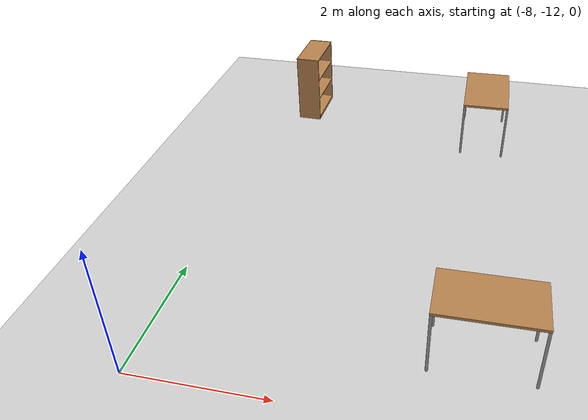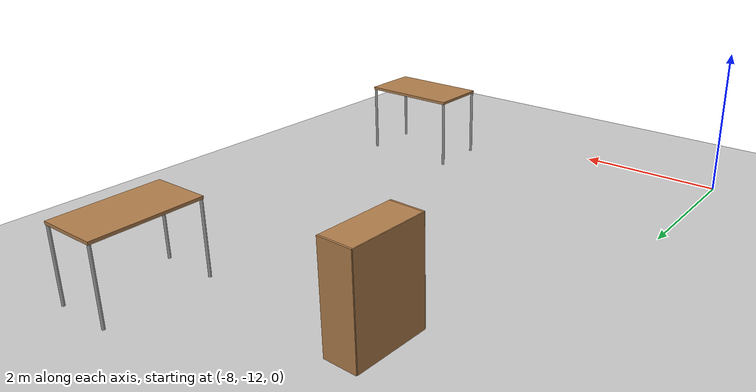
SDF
<sdf version="1.6">
 <world name="default">
  <model name="ground_plane">
   <static>1</static>
   <link name="link">
    <collision name="collision">
     <geometry><plane><normal>0 0 1</normal><size>100 100</size></plane></geometry>
     <surface><friction><ode><mu>100</mu><mu2>50</mu2></ode></friction></surface>
    </collision>
    <visual name="visual">
     <cast_shadows>0</cast_shadows>
     <geometry><plane><normal>0 0 1</normal><size>100 100</size></plane></geometry>
     <material>
      <script><uri>file://media/materials/scripts/gazebo.material</uri><name>Gazebo/Grey</name></script>
     </material>
    </visual>
   </link>
  </model>
  <model name="table_0_clone_clone_clone_0_clone">
   <static>0</static>
   <link name="link">
    <collision name="surface">
     <pose>0 0 1 0 -0 0</pose>
     <geometry><box><size>1.5 0.8 0.03</size></box></geometry>
     <surface><friction><ode><mu>0.6</mu><mu2>0.6</mu2></ode></friction></surface>
    </collision>
    <visual name="visual1">
     <pose>0 0 1 0 -0 0</pose>
     <geometry><box><size>1.4 0.8 0.04</size></box></geometry>
     <material>
      <script><uri>file://media/materials/scripts/gazebo.material</uri><name>Gazebo/Wood</name></script>
     </material>
    </visual>
    <collision name="front_left_leg">
     <pose>0.68 0.38 0.5 0 -0 0</pose>
     <geometry><cylinder><radius>0.02</radius><length>1</length></cylinder></geometry>
    </collision>
    <visual name="front_left_leg">
     <pose>0.68 0.38 0.5 0 -0 0</pose>
     <geometry><cylinder><radius>0.02</radius><length>1</length></cylinder></geometry>
     <material>
      <script><uri>file://media/materials/scripts/gazebo.material</uri><name>Gazebo/Grey</name></script>
     </material>
    </visual>
    <collision name="front_right_leg">
     <pose>0.68 -0.38 0.5 0 -0 0</pose>
     <geometry><cylinder><radius>0.02</radius><length>1</length></cylinder></geometry>
    </collision>
    <visual name="front_right_leg">
     <pose>0.68 -0.38 0.5 0 -0 0</pose>
     <geometry><cylinder><radius>0.02</radius><length>1</length></cylinder></geometry>
     <material>
      <script><uri>file://media/materials/scripts/gazebo.material</uri><name>Gazebo/Grey</name></script>
     </material>
    </visual>
    <collision name="back_right_leg">
     <pose>-0.68 -0.38 0.5 0 -0 0</pose>
     <geometry><cylinder><radius>0.02</radius><length>1</length></cylinder></geometry>
    </collision>
    <visual name="back_right_leg">
     <pose>-0.68 -0.38 0.5 0 -0 0</pose>
     <geometry><cylinder><radius>0.02</radius><length>1</length></cylinder></geometry>
     <material>
      <script><uri>file://media/materials/scripts/gazebo.material</uri><name>Gazebo/Grey</name></script>
     </material>
    </visual>
    <collision name="back_left_leg">
     <pose>-0.68 0.38 0.5 0 -0 0</pose>
     <geometry><cylinder><radius>0.02</radius><length>1</length></cylinder></geometry>
    </collision>
    <visual name="back_left_leg">
     <pose>-0.68 0.38 0.5 0 -0 0</pose>
     <geometry><cylinder><radius>0.02</radius><length>1</length></cylinder></geometry>
     <material>
      <script><uri>file://media/materials/scripts/gazebo.material</uri><name>Gazebo/Grey</name></script>
     </material>
    </visual>
    <inertial>
     <inertia><ixx>1</ixx><ixy>0</ixy><ixz>0</ixz><iyy>1</iyy><iyz>0</iyz><izz>1</izz></inertia>
     <mass>1</mass>
    </inertial>
   </link>
   <pose>-3.90513 -5.24711 -9e-06 0 -1e-06 -1.55435</pose>
  </model>
  <model name="bookshelf_clone">
   <static>1</static>
   <link name="link">
    <inertial><mass>1</mass></inertial>
    <collision name="back">
     <pose>0 0.005 0.6 0 -0 0</pose>
     <geometry><box><size>0.9 0.01 1.2</size></box></geometry>
    </collision>
    <visual name="visual1">
     <pose>0 0.005 0.6 0 -0 0</pose>
     <geometry><box><size>0.9 0.01 1.2</size></box></geometry>
     <material>
      <script><uri>file://media/materials/scripts/gazebo.material</uri><name>Gazebo/Wood</name></script>
     </material>
    </visual>
    <collision name="left_side">
     <pose>0.45 -0.195 0.6 0 -0 0</pose>
     <geometry><box><size>0.02 0.4 1.2</size></box></geometry>
    </collision>
    <visual name="visual2">
     <pose>0.45 -0.195 0.6 0 -0 0</pose>
     <geometry><box><size>0.02 0.4 1.2</size></box></geometry>
     <material>
      <script><uri>file://media/materials/scripts/gazebo.material</uri><name>Gazebo/Wood</name></script>
     </material>
    </visual>
    <collision name="right_side">
     <pose>-0.45 -0.195 0.6 0 -0 0</pose>
     <geometry><box><size>0.02 0.4 1.2</size></box></geometry>
    </collision>
    <visual name="visual3">
     <pose>-0.45 -0.195 0.6 0 -0 0</pose>
     <geometry><box><size>0.02 0.4 1.2</size></box></geometry>
     <material>
      <script><uri>file://media/materials/scripts/gazebo.material</uri><name>Gazebo/Wood</name></script>
     </material>
    </visual>
    <collision name="bottom">
     <pose>0 -0.195 0.03 0 -0 0</pose>
     <geometry><box><size>0.88 0.4 0.06</size></box></geometry>
    </collision>
    <visual name="visual4">
     <pose>0 -0.195 0.03 0 -0 0</pose>
     <geometry><box><size>0.88 0.4 0.06</size></box></geometry>
     <material>
      <script><uri>file://media/materials/scripts/gazebo.material</uri><name>Gazebo/Wood</name></script>
     </material>
    </visual>
    <collision name="top">
     <pose>0 -0.195 1.19 0 -0 0</pose>
     <geometry><box><size>0.88 0.4 0.02</size></box></geometry>
    </collision>
    <visual name="visual5">
     <pose>0 -0.195 1.19 0 -0 0</pose>
     <geometry><box><size>0.88 0.4 0.02</size></box></geometry>
     <material>
      <script><uri>file://media/materials/scripts/gazebo.material</uri><name>Gazebo/Wood</name></script>
     </material>
    </visual>
    <collision name="low_shelf">
     <pose>0 -0.195 0.43 0 -0 0</pose>
     <geometry><box><size>0.88 0.4 0.02</size></box></geometry>
    </collision>
    <visual name="visual6">
     <pose>0 -0.195 0.43 0 -0 0</pose>
     <geometry><box><size>0.88 0.4 0.02</size></box></geometry>
     <material>
      <script><uri>file://media/materials/scripts/gazebo.material</uri><name>Gazebo/Wood</name></script>
     </material>
    </visual>
    <collision name="high_shelf">
     <pose>0 -0.195 0.8 0 -0 0</pose>
     <geometry><box><size>0.88 0.4 0.02</size></box></geometry>
    </collision>
    <visual name="visual7">
     <pose>0 -0.195 0.8 0 -0 0</pose>
     <geometry><box><size>0.88 0.4 0.02</size></box></geometry>
     <material>
      <script><uri>file://media/materials/scripts/gazebo.material</uri><name>Gazebo/Wood</name></script>
     </material>
    </visual>
   </link>
   <pose>-7.34792 -5.5883 0.471392 0 -0 1.55071</pose>
  </model>
  <model name="table_0_clone_clone_clone_clone_clone_clone_clone">
   <static>0</static>
   <link name="link">
    <collision name="surface">
     <pose>0 0 1 0 -0 0</pose>
     <geometry><box><size>1.5 0.8 0.03</size></box></geometry>
     <surface><friction><ode><mu>0.6</mu><mu2>0.6</mu2></ode></friction></surface>
    </collision>
    <visual name="visual1">
     <pose>0 0 1 0 -0 0</pose>
     <geometry><box><size>1.4 0.8 0.04</size></box></geometry>
     <material>
      <script><uri>file://media/materials/scripts/gazebo.material</uri><name>Gazebo/Wood</name></script>
     </material>
    </visual>
    <collision name="front_left_leg">
     <pose>0.68 0.38 0.5 0 -0 0</pose>
     <geometry><cylinder><radius>0.02</radius><length>1</length></cylinder></geometry>
    </collision>
    <visual name="front_left_leg">
     <pose>0.68 0.38 0.5 0 -0 0</pose>
     <geometry><cylinder><radius>0.02</radius><length>1</length></cylinder></geometry>
     <material>
      <script><uri>file://media/materials/scripts/gazebo.material</uri><name>Gazebo/Grey</name></script>
     </material>
    </visual>
    <collision name="front_right_leg">
     <pose>0.68 -0.38 0.5 0 -0 0</pose>
     <geometry><cylinder><radius>0.02</radius><length>1</length></cylinder></geometry>
    </collision>
    <visual name="front_right_leg">
     <pose>0.68 -0.38 0.5 0 -0 0</pose>
     <geometry><cylinder><radius>0.02</radius><length>1</length></cylinder></geometry>
     <material>
      <script><uri>file://media/materials/scripts/gazebo.material</uri><name>Gazebo/Grey</name></script>
     </material>
    </visual>
    <collision name="back_right_leg">
     <pose>-0.68 -0.38 0.5 0 -0 0</pose>
     <geometry><cylinder><radius>0.02</radius><length>1</length></cylinder></geometry>
    </collision>
    <visual name="back_right_leg">
     <pose>-0.68 -0.38 0.5 0 -0 0</pose>
     <geometry><cylinder><radius>0.02</radius><length>1</length></cylinder></geometry>
     <material>
      <script><uri>file://media/materials/scripts/gazebo.material</uri><name>Gazebo/Grey</name></script>
     </material>
    </visual>
    <collision name="back_left_leg">
     <pose>-0.68 0.38 0.5 0 -0 0</pose>
     <geometry><cylinder><radius>0.02</radius><length>1</length></cylinder></geometry>
    </collision>
    <visual name="back_left_leg">
     <pose>-0.68 0.38 0.5 0 -0 0</pose>
     <geometry><cylinder><radius>0.02</radius><length>1</length></cylinder></geometry>
     <material>
      <script><uri>file://media/materials/scripts/gazebo.material</uri><name>Gazebo/Grey</name></script>
     </material>
    </visual>
    <inertial>
     <inertia><ixx>1</ixx><ixy>0</ixy><ixz>0</ixz><iyy>1</iyy><iyz>0</iyz><izz>1</izz></inertia>
     <mass>1</mass>
    </inertial>
   </link>
   <pose>-3.59546 -10.7825 0.001599 -3e-06 -0.002286 0.009325</pose>
  </model>
 </world>
</sdf>
